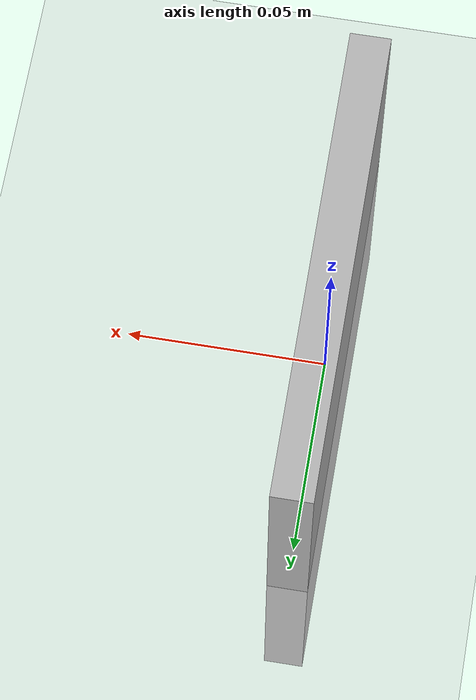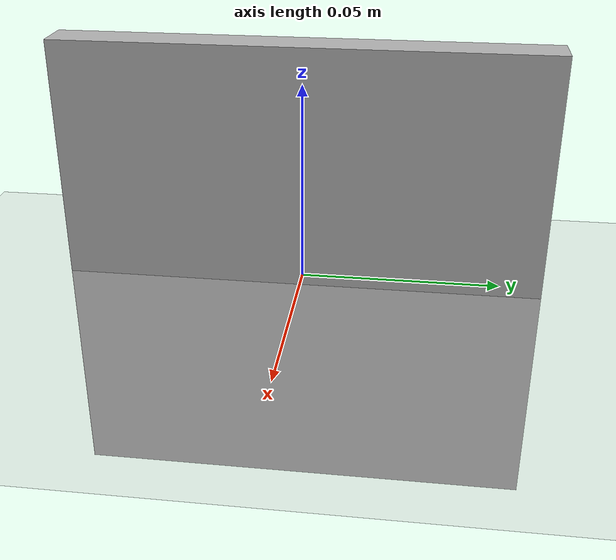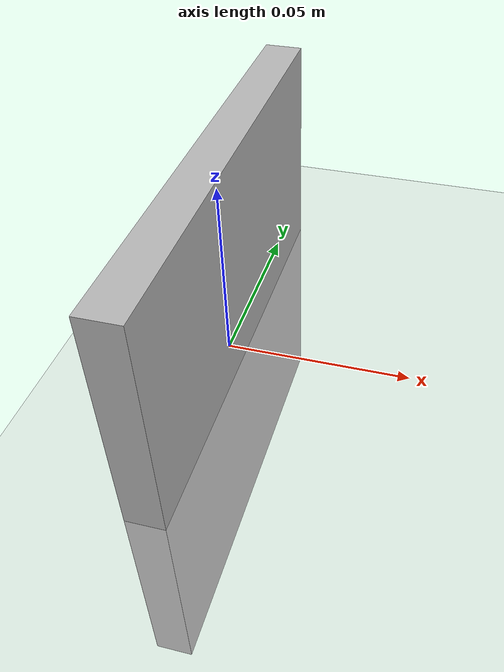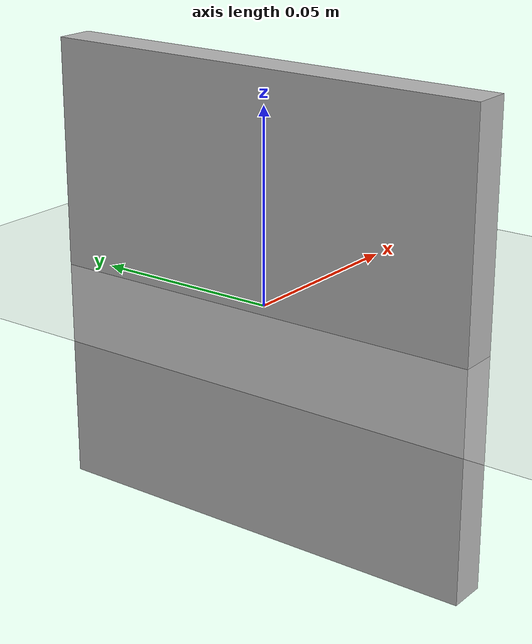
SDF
<?xml version="1.0" ?>
<sdf version="1.5">
  <world name="default">
    <include>
      <uri>model://ground_plane</uri>
    </include>
    <include>
      <uri>model://sun</uri>
    </include>
    <model name="box">
      <pose>0 0 0 0 0 0</pose>
      <link name="link">
        <collision name="collision">
          <geometry>
            <box>
              <size>1 1 1</size>
            </box>
          </geometry>
        </collision>
        <visual name="visual">
          <geometry>
            <box>
              <size>0.01 0.12 0.12</size>
            </box>
          </geometry>
          <material>
            <script>Gazebo/WoodPallet</script>
          </material>
        </visual>
      </link>
    </model>
  </world>
</sdf>
